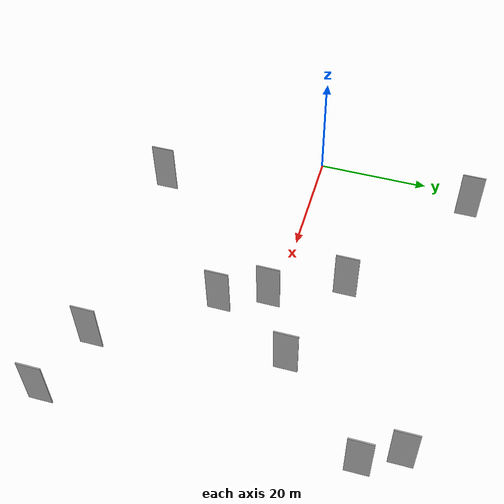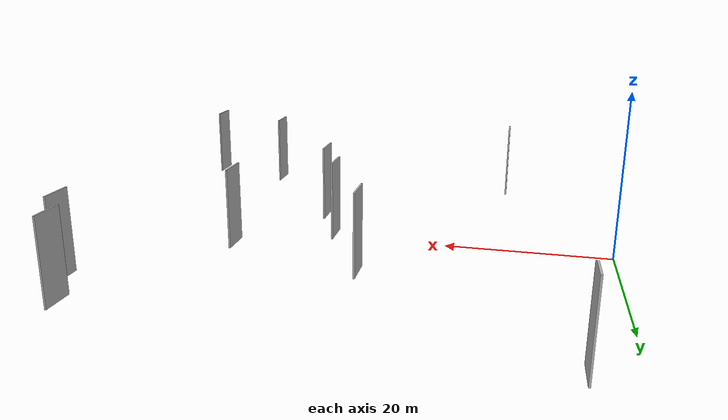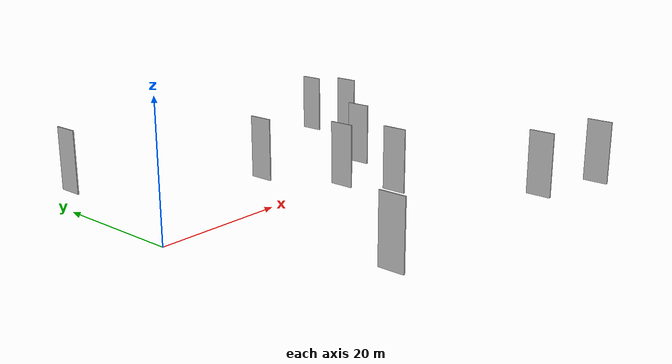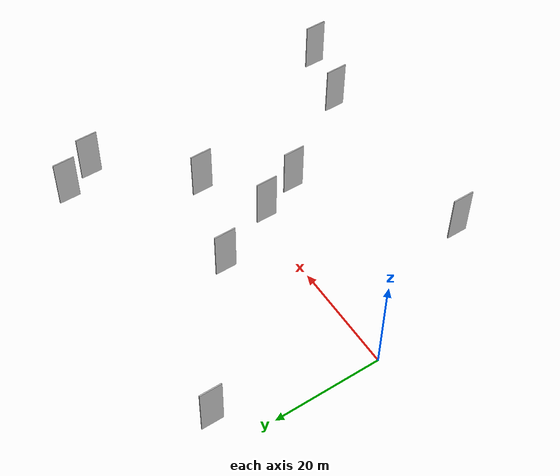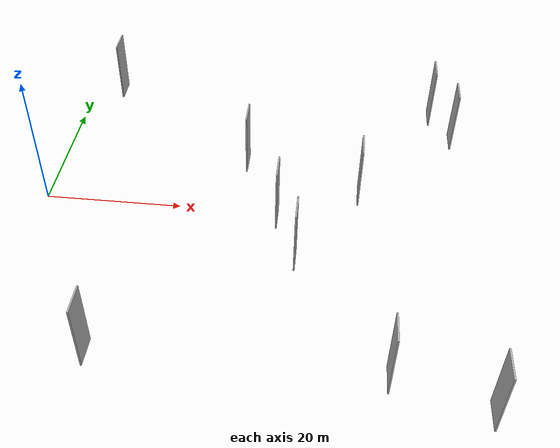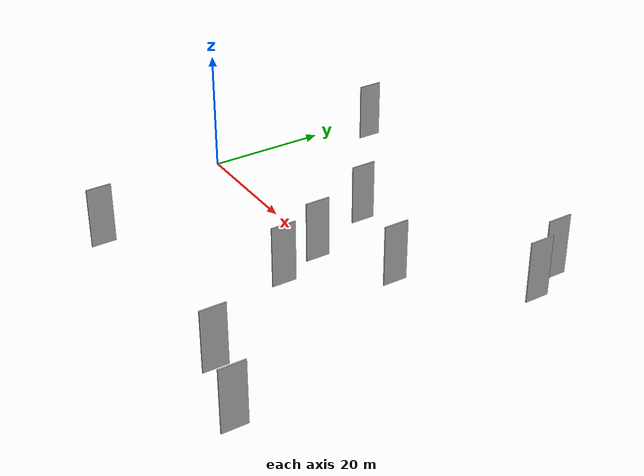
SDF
<sdf version="1.6">
 <world name="default">
  <scene>
   <sky><clouds><speed>12</speed></clouds></sky>
   <ambient>0.4 0.4 0.4 1</ambient>
   <background>0.7 0.7 0.7 1</background>
   <shadows>1</shadows>
  </scene>
  <gravity>0 0 -9.8066</gravity>
  <magnetic_field>6e-06 2.3e-05 -4.2e-05</magnetic_field>
  <physics default="0" name="default_physics" type="ode">
   <ode>
    <solver>
     <type>quick</type>
     <iters>10</iters>
     <sor>1.0</sor>
     <use_dynamic_moi_rescaling>0</use_dynamic_moi_rescaling>
    </solver>
    <constraints>
     <cfm>0</cfm>
     <erp>0.2</erp>
     <contact_max_correcting_vel>100</contact_max_correcting_vel>
     <contact_surface_layer>0.001</contact_surface_layer>
    </constraints>
   </ode>
   <max_step_size>0.004</max_step_size>
   <real_time_factor>1</real_time_factor>
   <real_time_update_rate>250</real_time_update_rate>
  </physics>
  <light name="sun" type="directional">
   <pose>0 0 10 0 0 0</pose>
   <diffuse>0.8 0.8 0.8 1</diffuse>
   <specular>0.2 0.2 0.2 1</specular>
   <attenuation>
    <range>1000</range>
    <constant>0.9</constant>
    <linear>0.01</linear>
    <quadratic>0.001</quadratic>
   </attenuation>
   <direction>-0.5 0.1 -0.9</direction>
  </light>
  <model name="grey_wall_1">
   <static>1</static>
   <pose>49.9598 -26.8817 0.0 0.000000 0.000000 1.570796</pose>
   <link name="link">
    <pose>0 0 5.00 0 0 0</pose>
    <collision name="collision"><geometry><box><size>4.00 0.2 10.00</size></box></geometry></collision>
    <visual name="visual">
     <cast_shadows>0</cast_shadows>
     <geometry><box><size>4.00 0.2 10.00</size></box></geometry>
     <material>
      <script>
       <uri>model://HANNAS_wall/materials/scripts</uri>
       <uri>model://HANNAS_wall/materials/textures</uri>
       <name>vrc/HANNAS_wall</name>
      </script>
     </material>
    </visual>
   </link>
  </model>
  <model name="grey_wall_2">
   <static>1</static>
   <pose>28.8143 10.8334 0.0 0.000000 0.000000 1.570796</pose>
   <link name="link">
    <pose>0 0 5.00 0 0 0</pose>
    <collision name="collision"><geometry><box><size>4.00 0.2 10.00</size></box></geometry></collision>
    <visual name="visual">
     <cast_shadows>0</cast_shadows>
     <geometry><box><size>4.00 0.2 10.00</size></box></geometry>
     <material>
      <script>
       <uri>model://HANNAS_wall/materials/scripts</uri>
       <uri>model://HANNAS_wall/materials/textures</uri>
       <name>vrc/HANNAS_wall</name>
      </script>
     </material>
    </visual>
   </link>
  </model>
  <model name="grey_wall_3">
   <static>1</static>
   <pose>13.2512 -26.9395 0.0 0.000000 0.000000 1.570796</pose>
   <link name="link">
    <pose>0 0 5.00 0 0 0</pose>
    <collision name="collision"><geometry><box><size>4.00 0.2 10.00</size></box></geometry></collision>
    <visual name="visual">
     <cast_shadows>0</cast_shadows>
     <geometry><box><size>4.00 0.2 10.00</size></box></geometry>
     <material>
      <script>
       <uri>model://HANNAS_wall/materials/scripts</uri>
       <uri>model://HANNAS_wall/materials/textures</uri>
       <name>vrc/HANNAS_wall</name>
      </script>
     </material>
    </visual>
   </link>
  </model>
  <model name="grey_wall_4">
   <static>1</static>
   <pose>57.3565 25.8291 0.0 0.000000 0.000000 1.570796</pose>
   <link name="link">
    <pose>0 0 5.00 0 0 0</pose>
    <collision name="collision"><geometry><box><size>4.00 0.2 10.00</size></box></geometry></collision>
    <visual name="visual">
     <cast_shadows>0</cast_shadows>
     <geometry><box><size>4.00 0.2 10.00</size></box></geometry>
     <material>
      <script>
       <uri>model://HANNAS_wall/materials/scripts</uri>
       <uri>model://HANNAS_wall/materials/textures</uri>
       <name>vrc/HANNAS_wall</name>
      </script>
     </material>
    </visual>
   </link>
  </model>
  <model name="grey_wall_5">
   <static>1</static>
   <pose>61.7967 -30.4839 0.0 0.000000 0.000000 1.570796</pose>
   <link name="link">
    <pose>0 0 5.00 0 0 0</pose>
    <collision name="collision"><geometry><box><size>4.00 0.2 10.00</size></box></geometry></collision>
    <visual name="visual">
     <cast_shadows>0</cast_shadows>
     <geometry><box><size>4.00 0.2 10.00</size></box></geometry>
     <material>
      <script>
       <uri>model://HANNAS_wall/materials/scripts</uri>
       <uri>model://HANNAS_wall/materials/textures</uri>
       <name>vrc/HANNAS_wall</name>
      </script>
     </material>
    </visual>
   </link>
  </model>
  <model name="grey_wall_6">
   <static>1</static>
   <pose>45.9588 4.9942 0.0 0.000000 0.000000 1.570796</pose>
   <link name="link">
    <pose>0 0 5.00 0 0 0</pose>
    <collision name="collision"><geometry><box><size>4.00 0.2 10.00</size></box></geometry></collision>
    <visual name="visual">
     <cast_shadows>0</cast_shadows>
     <geometry><box><size>4.00 0.2 10.00</size></box></geometry>
     <material>
      <script>
       <uri>model://HANNAS_wall/materials/scripts</uri>
       <uri>model://HANNAS_wall/materials/textures</uri>
       <name>vrc/HANNAS_wall</name>
      </script>
     </material>
    </visual>
   </link>
  </model>
  <model name="grey_wall_7">
   <static>1</static>
   <pose>60.4198 19.8133 0.0 0.000000 0.000000 1.570796</pose>
   <link name="link">
    <pose>0 0 5.00 0 0 0</pose>
    <collision name="collision"><geometry><box><size>4.00 0.2 10.00</size></box></geometry></collision>
    <visual name="visual">
     <cast_shadows>0</cast_shadows>
     <geometry><box><size>4.00 0.2 10.00</size></box></geometry>
     <material>
      <script>
       <uri>model://HANNAS_wall/materials/scripts</uri>
       <uri>model://HANNAS_wall/materials/textures</uri>
       <name>vrc/HANNAS_wall</name>
      </script>
     </material>
    </visual>
   </link>
  </model>
  <model name="grey_wall_8">
   <static>1</static>
   <pose>5.0666 28.2837 0.0 0.000000 0.000000 1.570796</pose>
   <link name="link">
    <pose>0 0 5.00 0 0 0</pose>
    <collision name="collision"><geometry><box><size>4.00 0.2 10.00</size></box></geometry></collision>
    <visual name="visual">
     <cast_shadows>0</cast_shadows>
     <geometry><box><size>4.00 0.2 10.00</size></box></geometry>
     <material>
      <script>
       <uri>model://HANNAS_wall/materials/scripts</uri>
       <uri>model://HANNAS_wall/materials/textures</uri>
       <name>vrc/HANNAS_wall</name>
      </script>
     </material>
    </visual>
   </link>
  </model>
  <model name="grey_wall_9">
   <static>1</static>
   <pose>34.4053 -1.1296 0.0 0.000000 0.000000 1.570796</pose>
   <link name="link">
    <pose>0 0 5.00 0 0 0</pose>
    <collision name="collision"><geometry><box><size>4.00 0.2 10.00</size></box></geometry></collision>
    <visual name="visual">
     <cast_shadows>0</cast_shadows>
     <geometry><box><size>4.00 0.2 10.00</size></box></geometry>
     <material>
      <script>
       <uri>model://HANNAS_wall/materials/scripts</uri>
       <uri>model://HANNAS_wall/materials/textures</uri>
       <name>vrc/HANNAS_wall</name>
      </script>
     </material>
    </visual>
   </link>
  </model>
  <model name="grey_wall_10">
   <static>1</static>
   <pose>37.5583 -8.9231 0.0 0.000000 0.000000 1.570796</pose>
   <link name="link">
    <pose>0 0 5.00 0 0 0</pose>
    <collision name="collision"><geometry><box><size>4.00 0.2 10.00</size></box></geometry></collision>
    <visual name="visual">
     <cast_shadows>0</cast_shadows>
     <geometry><box><size>4.00 0.2 10.00</size></box></geometry>
     <material>
      <script>
       <uri>model://HANNAS_wall/materials/scripts</uri>
       <uri>model://HANNAS_wall/materials/textures</uri>
       <name>vrc/HANNAS_wall</name>
      </script>
     </material>
    </visual>
   </link>
  </model>
 </world>
</sdf>
